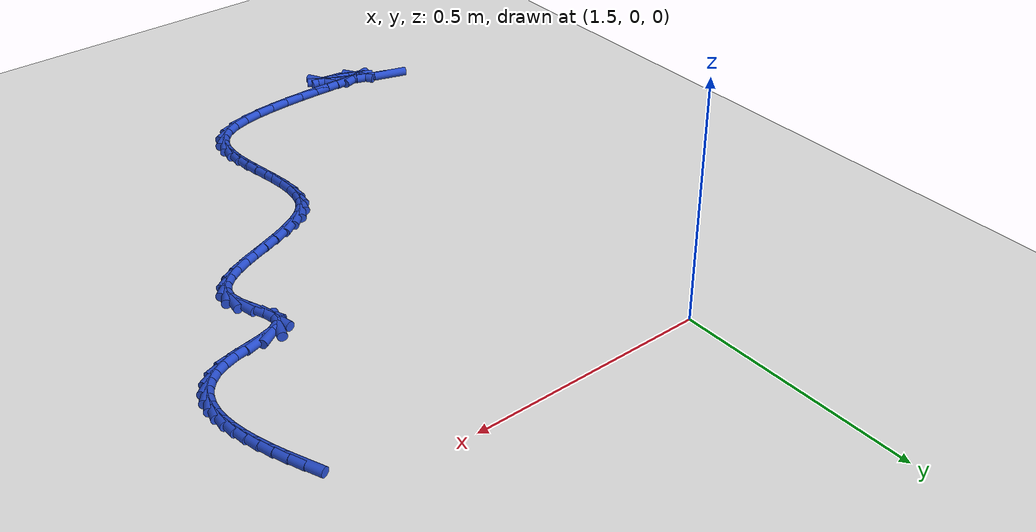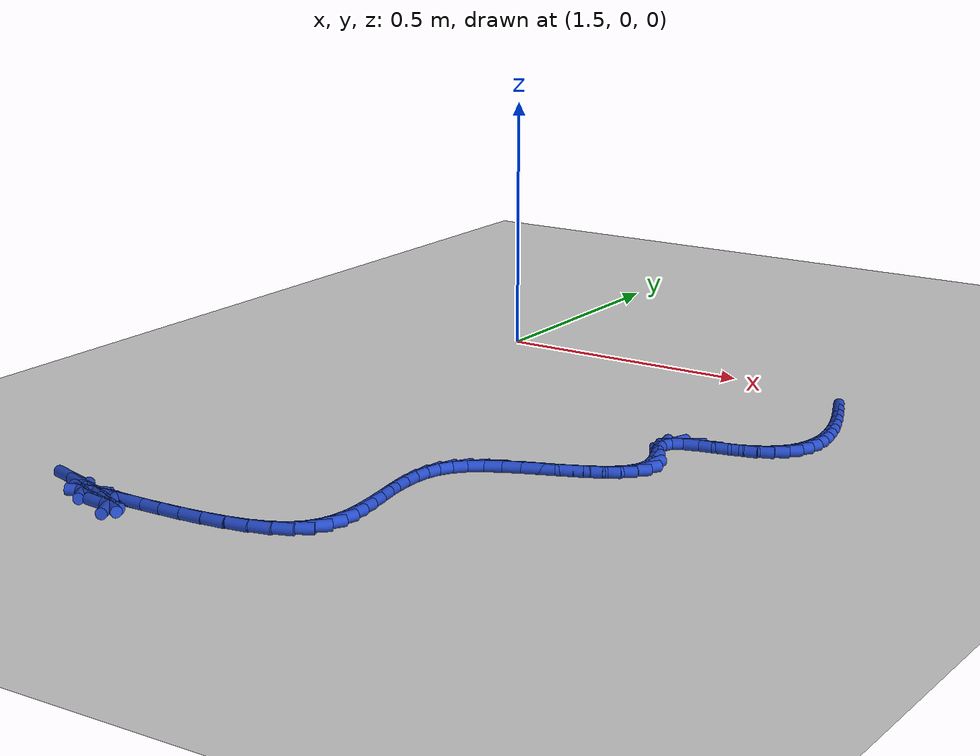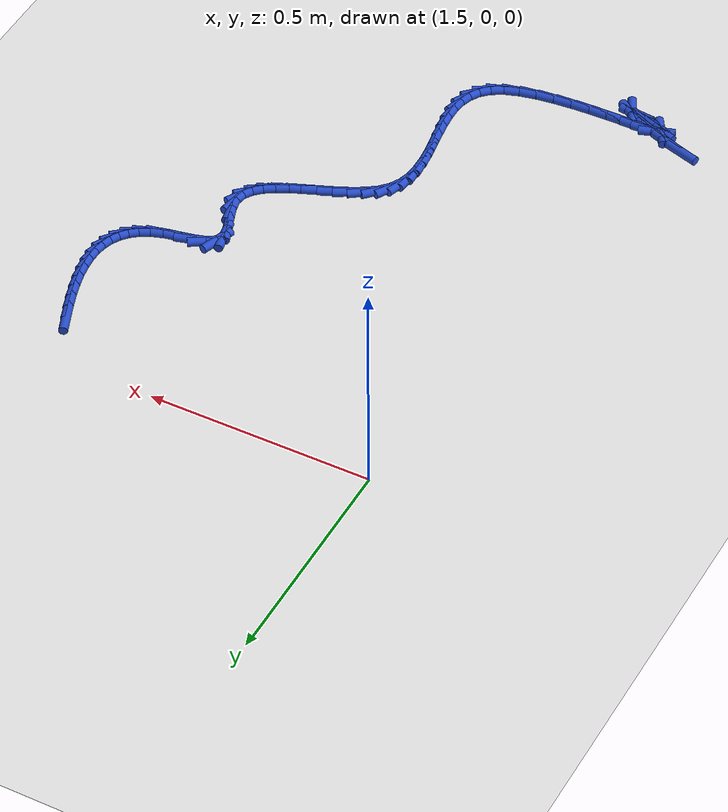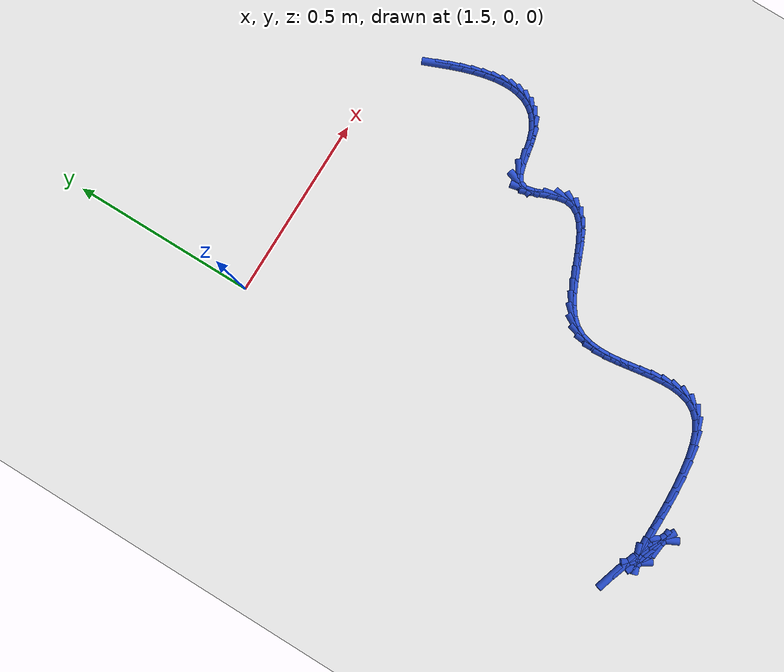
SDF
<sdf version="1.6">
 <world name="default">
  <model name="ground_plane">
   <static>1</static>
   <link name="link">
    <collision name="collision">
     <geometry><plane><normal>0 0 1</normal><size>100 100</size></plane></geometry>
     <surface><friction><ode><mu>100</mu><mu2>50</mu2></ode></friction></surface>
    </collision>
    <visual name="visual">
     <cast_shadows>0</cast_shadows>
     <geometry><plane><normal>0 0 1</normal><size>100 100</size></plane></geometry>
     <material>
      <script><uri>file://media/materials/scripts/gazebo.material</uri><name>Gazebo/WhiteGlow</name></script>
     </material>
    </visual>
   </link>
  </model>
  <model name="line">
   <link name="link_141">
    <pose>2.265449667367501 -0.10924414752717877 0.01 0 1.57 -1.1883199890599174</pose>
    <collision name="collision">
     <geometry><cylinder><radius>0.01</radius><length>0.08</length></cylinder></geometry>
    </collision>
    <visual name="visual">
     <material>
      <script><name>Gazebo/Blue</name><uri>file://media/materials/scripts/gazebo.material</uri></script>
     </material>
     <geometry><cylinder><radius>0.01</radius><length>0.08</length></cylinder></geometry>
    </visual>
   </link>
   <link name="link_142">
    <pose>2.27817619315328 -0.14087958956525654 0.01 0 1.57 -1.2213939995250278</pose>
    <collision name="collision">
     <geometry><cylinder><radius>0.01</radius><length>0.08</length></cylinder></geometry>
    </collision>
    <visual name="visual">
     <material>
      <script><name>Gazebo/Blue</name><uri>file://media/materials/scripts/gazebo.material</uri></script>
     </material>
     <geometry><cylinder><radius>0.01</radius><length>0.08</length></cylinder></geometry>
    </visual>
   </link>
   <link name="link_143">
    <pose>2.2894349260151463 -0.17178034897393352 0.01 0 1.57 -1.2632340523790242</pose>
    <collision name="collision">
     <geometry><cylinder><radius>0.01</radius><length>0.08</length></cylinder></geometry>
    </collision>
    <visual name="visual">
     <material>
      <script><name>Gazebo/Blue</name><uri>file://media/materials/scripts/gazebo.material</uri></script>
     </material>
     <geometry><cylinder><radius>0.01</radius><length>0.08</length></cylinder></geometry>
    </visual>
   </link>
   <link name="link_144">
    <pose>2.298964438918104 -0.20178116999364165 0.01 0 1.57 -1.3159232495802464</pose>
    <collision name="collision">
     <geometry><cylinder><radius>0.01</radius><length>0.08</length></cylinder></geometry>
    </collision>
    <visual name="visual">
     <material>
      <script><name>Gazebo/Blue</name><uri>file://media/materials/scripts/gazebo.material</uri></script>
     </material>
     <geometry><cylinder><radius>0.01</radius><length>0.08</length></cylinder></geometry>
    </visual>
   </link>
   <link name="link_145">
    <pose>2.3065033048271557 -0.23071679686481256 0.01 0 1.57 -1.3822399352591166</pose>
    <collision name="collision">
     <geometry><cylinder><radius>0.01</radius><length>0.08</length></cylinder></geometry>
    </collision>
    <visual name="visual">
     <material>
      <script><name>Gazebo/Blue</name><uri>file://media/materials/scripts/gazebo.material</uri></script>
     </material>
     <geometry><cylinder><radius>0.01</radius><length>0.08</length></cylinder></geometry>
    </visual>
   </link>
   <link name="link_146">
    <pose>2.3117900967073073 -0.2584219738278782 0.01 0 1.57 -1.465773802282627</pose>
    <collision name="collision">
     <geometry><cylinder><radius>0.01</radius><length>0.08</length></cylinder></geometry>
    </collision>
    <visual name="visual">
     <material>
      <script><name>Gazebo/Blue</name><uri>file://media/materials/scripts/gazebo.material</uri></script>
     </material>
     <geometry><cylinder><radius>0.01</radius><length>0.08</length></cylinder></geometry>
    </visual>
   </link>
   <link name="link_147">
    <pose>2.3145633875235623 -0.28473144512327025 0.01 0 1.57 1.5707301699780476</pose>
    <collision name="collision">
     <geometry><cylinder><radius>0.01</radius><length>0.08</length></cylinder></geometry>
    </collision>
    <visual name="visual">
     <material>
      <script><name>Gazebo/Blue</name><uri>file://media/materials/scripts/gazebo.material</uri></script>
     </material>
     <geometry><cylinder><radius>0.01</radius><length>0.08</length></cylinder></geometry>
    </visual>
   </link>
   <link name="link_148">
    <pose>2.3145617502409253 -0.3094799549914208 0.01 0 1.57 1.4395956334596052</pose>
    <collision name="collision">
     <geometry><cylinder><radius>0.01</radius><length>0.08</length></cylinder></geometry>
    </collision>
    <visual name="visual">
     <material>
      <script><name>Gazebo/Blue</name><uri>file://media/materials/scripts/gazebo.material</uri></script>
     </material>
     <geometry><cylinder><radius>0.01</radius><length>0.08</length></cylinder></geometry>
    </visual>
   </link>
   <link name="link_149">
    <pose>2.3115237578243994 -0.3325022476727614 0.01 0 1.57 1.2794902531644328</pose>
    <collision name="collision">
     <geometry><cylinder><radius>0.01</radius><length>0.08</length></cylinder></geometry>
    </collision>
    <visual name="visual">
     <material>
      <script><name>Gazebo/Blue</name><uri>file://media/materials/scripts/gazebo.material</uri></script>
     </material>
     <geometry><cylinder><radius>0.01</radius><length>0.08</length></cylinder></geometry>
    </visual>
   </link>
   <link name="link_150">
    <pose>2.305187983238988 -0.3536330674077239 0.01 0 1.57 1.0922491256917661</pose>
    <collision name="collision">
     <geometry><cylinder><radius>0.01</radius><length>0.08</length></cylinder></geometry>
    </collision>
    <visual name="visual">
     <material>
      <script><name>Gazebo/Blue</name><uri>file://media/materials/scripts/gazebo.material</uri></script>
     </material>
     <geometry><cylinder><radius>0.01</radius><length>0.08</length></cylinder></geometry>
    </visual>
   </link>
   <link name="link_151">
    <pose>2.295292999449698 -0.37270715843674024 0.01 0 1.57 0.8876481031042162</pose>
    <collision name="collision">
     <geometry><cylinder><radius>0.01</radius><length>0.08</length></cylinder></geometry>
    </collision>
    <visual name="visual">
     <material>
      <script><name>Gazebo/Blue</name><uri>file://media/materials/scripts/gazebo.material</uri></script>
     </material>
     <geometry><cylinder><radius>0.01</radius><length>0.08</length></cylinder></geometry>
    </visual>
   </link>
   <link name="link_152">
    <pose>2.28157737942153 -0.3895592650002415 0.01 0 1.57 0.6824603315181406</pose>
    <collision name="collision">
     <geometry><cylinder><radius>0.01</radius><length>0.08</length></cylinder></geometry>
    </collision>
    <visual name="visual">
     <material>
      <script><name>Gazebo/Blue</name><uri>file://media/materials/scripts/gazebo.material</uri></script>
     </material>
     <geometry><cylinder><radius>0.01</radius><length>0.08</length></cylinder></geometry>
    </visual>
   </link>
   <link name="link_153">
    <pose>2.2637796961194905 -0.4040241313386609 0.01 0 1.57 0.49359817610222023</pose>
    <collision name="collision">
     <geometry><cylinder><radius>0.01</radius><length>0.08</length></cylinder></geometry>
    </collision>
    <visual name="visual">
     <material>
      <script><name>Gazebo/Blue</name><uri>file://media/materials/scripts/gazebo.material</uri></script>
     </material>
     <geometry><cylinder><radius>0.01</radius><length>0.08</length></cylinder></geometry>
    </visual>
   </link>
   <link name="link_154">
    <pose>2.2416385225085818 -0.41593650169242946 0.01 0 1.57 0.33111780571313304</pose>
    <collision name="collision">
     <geometry><cylinder><radius>0.01</radius><length>0.08</length></cylinder></geometry>
    </collision>
    <visual name="visual">
     <material>
      <script><name>Gazebo/Blue</name><uri>file://media/materials/scripts/gazebo.material</uri></script>
     </material>
     <geometry><cylinder><radius>0.01</radius><length>0.08</length></cylinder></geometry>
    </visual>
   </link>
   <link name="link_155">
    <pose>2.2148924315538094 -0.42513112030197914 0.01 0 1.57 0.21434153716862916</pose>
    <collision name="collision">
     <geometry><cylinder><radius>0.01</radius><length>0.08</length></cylinder></geometry>
    </collision>
    <visual name="visual">
     <material>
      <script><name>Gazebo/Blue</name><uri>file://media/materials/scripts/gazebo.material</uri></script>
     </material>
     <geometry><cylinder><radius>0.01</radius><length>0.08</length></cylinder></geometry>
    </visual>
   </link>
   <link name="link_156">
    <pose>2.184032570766493 -0.43184886294657127 0.01 0 1.57 0.19484123318579932</pose>
    <collision name="collision">
     <geometry><cylinder><radius>0.01</radius><length>0.08</length></cylinder></geometry>
    </collision>
    <visual name="visual">
     <material>
      <script><name>Gazebo/Blue</name><uri>file://media/materials/scripts/gazebo.material</uri></script>
     </material>
     <geometry><cylinder><radius>0.01</radius><length>0.08</length></cylinder></geometry>
    </visual>
   </link>
   <link name="link_157">
    <pose>2.152702319187603 -0.43803172677364294 0.01 0 1.57 0.28593233086041525</pose>
    <collision name="collision">
     <geometry><cylinder><radius>0.01</radius><length>0.08</length></cylinder></geometry>
    </collision>
    <visual name="visual">
     <material>
      <script><name>Gazebo/Blue</name><uri>file://media/materials/scripts/gazebo.material</uri></script>
     </material>
     <geometry><cylinder><radius>0.01</radius><length>0.08</length></cylinder></geometry>
    </visual>
   </link>
   <link name="link_158">
    <pose>2.1253702542249893 -0.44606703236632383 0.01 0 1.57 0.5768455559353157</pose>
    <collision name="collision">
     <geometry><cylinder><radius>0.01</radius><length>0.08</length></cylinder></geometry>
    </collision>
    <visual name="visual">
     <material>
      <script><name>Gazebo/Blue</name><uri>file://media/materials/scripts/gazebo.material</uri></script>
     </material>
     <geometry><cylinder><radius>0.01</radius><length>0.08</length></cylinder></geometry>
    </visual>
   </link>
   <link name="link_159">
    <pose>2.106504956140573 -0.4583421018479608 0.01 0 1.57 1.2488324064501248</pose>
    <collision name="collision">
     <geometry><cylinder><radius>0.01</radius><length>0.08</length></cylinder></geometry>
    </collision>
    <visual name="visual">
     <material>
      <script><name>Gazebo/Blue</name><uri>file://media/materials/scripts/gazebo.material</uri></script>
     </material>
     <geometry><cylinder><radius>0.01</radius><length>0.08</length></cylinder></geometry>
    </visual>
   </link>
   <link name="link_160">
    <pose>2.100253686150079 -0.47708258226997163 0.01 0 1.57 -1.3658441360772549</pose>
    <collision name="collision">
     <geometry><cylinder><radius>0.01</radius><length>0.08</length></cylinder></geometry>
    </collision>
    <visual name="visual">
     <material>
      <script><name>Gazebo/Blue</name><uri>file://media/materials/scripts/gazebo.material</uri></script>
     </material>
     <geometry><cylinder><radius>0.01</radius><length>0.08</length></cylinder></geometry>
    </visual>
   </link>
   <link name="link_161">
    <pose>2.1053943073048553 -0.5018124512847172 0.01 0 1.57 -1.2006105305632502</pose>
    <collision name="collision">
     <geometry><cylinder><radius>0.01</radius><length>0.08</length></cylinder></geometry>
    </collision>
    <visual name="visual">
     <material>
      <script><name>Gazebo/Blue</name><uri>file://media/materials/scripts/gazebo.material</uri></script>
     </material>
     <geometry><cylinder><radius>0.01</radius><length>0.08</length></cylinder></geometry>
    </visual>
   </link>
   <link name="link_162">
    <pose>2.1162638746234705 -0.5298212470781661 0.01 0 1.57 -1.2086232534333459</pose>
    <collision name="collision">
     <geometry><cylinder><radius>0.01</radius><length>0.08</length></cylinder></geometry>
    </collision>
    <visual name="visual">
     <material>
      <script><name>Gazebo/Blue</name><uri>file://media/materials/scripts/gazebo.material</uri></script>
     </material>
     <geometry><cylinder><radius>0.01</radius><length>0.08</length></cylinder></geometry>
    </visual>
   </link>
   <link name="link_163">
    <pose>2.1270659436455484 -0.558331336163409 0.01 0 1.57 -1.3823649048780595</pose>
    <collision name="collision">
     <geometry><cylinder><radius>0.01</radius><length>0.08</length></cylinder></geometry>
    </collision>
    <visual name="visual">
     <material>
      <script><name>Gazebo/Blue</name><uri>file://media/materials/scripts/gazebo.material</uri></script>
     </material>
     <geometry><cylinder><radius>0.01</radius><length>0.08</length></cylinder></geometry>
    </visual>
   </link>
   <link name="link_164">
    <pose>2.1320749820216904 -0.5845987877914685 0.01 0 1.57 1.4123359082377895</pose>
    <collision name="collision">
     <geometry><cylinder><radius>0.01</radius><length>0.08</length></cylinder></geometry>
    </collision>
    <visual name="visual">
     <material>
      <script><name>Gazebo/Blue</name><uri>file://media/materials/scripts/gazebo.material</uri></script>
     </material>
     <geometry><cylinder><radius>0.01</radius><length>0.08</length></cylinder></geometry>
    </visual>
   </link>
   <link name="link_165">
    <pose>2.1284548469121503 -0.6072529251763822 0.01 0 1.57 1.0471958639278067</pose>
    <collision name="collision">
     <geometry><cylinder><radius>0.01</radius><length>0.08</length></cylinder></geometry>
    </collision>
    <visual name="visual">
     <material>
      <script><name>Gazebo/Blue</name><uri>file://media/materials/scripts/gazebo.material</uri></script>
     </material>
     <geometry><cylinder><radius>0.01</radius><length>0.08</length></cylinder></geometry>
    </visual>
   </link>
   <link name="link_166">
    <pose>2.117201429175815 -0.6267443405045714 0.01 0 1.57 0.7644983092018023</pose>
    <collision name="collision">
     <geometry><cylinder><radius>0.01</radius><length>0.08</length></cylinder></geometry>
    </collision>
    <visual name="visual">
     <material>
      <script><name>Gazebo/Blue</name><uri>file://media/materials/scripts/gazebo.material</uri></script>
     </material>
     <geometry><cylinder><radius>0.01</radius><length>0.08</length></cylinder></geometry>
    </visual>
   </link>
   <link name="link_167">
    <pose>2.0995747847182966 -0.6436491769468765 0.01 0 1.57 0.5798766462250383</pose>
    <collision name="collision">
     <geometry><cylinder><radius>0.01</radius><length>0.08</length></cylinder></geometry>
    </collision>
    <visual name="visual">
     <material>
      <script><name>Gazebo/Blue</name><uri>file://media/materials/scripts/gazebo.material</uri></script>
     </material>
     <geometry><cylinder><radius>0.01</radius><length>0.08</length></cylinder></geometry>
    </visual>
   </link>
   <link name="link_168">
    <pose>2.076834969445212 -0.658543577674139 0.01 0 1.57 0.4685583869411463</pose>
    <collision name="collision">
     <geometry><cylinder><radius>0.01</radius><length>0.08</length></cylinder></geometry>
    </collision>
    <visual name="visual">
     <material>
      <script><name>Gazebo/Blue</name><uri>file://media/materials/scripts/gazebo.material</uri></script>
     </material>
     <geometry><cylinder><radius>0.01</radius><length>0.08</length></cylinder></geometry>
    </visual>
   </link>
   <link name="link_169">
    <pose>2.050242039262175 -0.6720036858571994 0.01 0 1.57 0.4076002595366358</pose>
    <collision name="collision">
     <geometry><cylinder><radius>0.01</radius><length>0.08</length></cylinder></geometry>
    </collision>
    <visual name="visual">
     <material>
      <script><name>Gazebo/Blue</name><uri>file://media/materials/scripts/gazebo.material</uri></script>
     </material>
     <geometry><cylinder><radius>0.01</radius><length>0.08</length></cylinder></geometry>
    </visual>
   </link>
   <link name="link_170">
    <pose>2.0210560500747996 -0.6846056446668995 0.01 0 1.57 0.38367605017374073</pose>
    <collision name="collision">
     <geometry><cylinder><radius>0.01</radius><length>0.08</length></cylinder></geometry>
    </collision>
    <visual name="visual">
     <material>
      <script><name>Gazebo/Blue</name><uri>file://media/materials/scripts/gazebo.material</uri></script>
     </material>
     <geometry><cylinder><radius>0.01</radius><length>0.08</length></cylinder></geometry>
    </visual>
   </link>
   <link name="link_171">
    <pose>1.9905370577887003 -0.6969255972740804 0.01 0 1.57 0.39109350833750517</pose>
    <collision name="collision">
     <geometry><cylinder><radius>0.01</radius><length>0.08</length></cylinder></geometry>
    </collision>
    <visual name="visual">
     <material>
      <script><name>Gazebo/Blue</name><uri>file://media/materials/scripts/gazebo.material</uri></script>
     </material>
     <geometry><cylinder><radius>0.01</radius><length>0.08</length></cylinder></geometry>
    </visual>
   </link>
   <link name="link_172">
    <pose>1.959945118309492 -0.7095396868495827 0.01 0 1.57 0.4299633632502843</pose>
    <collision name="collision">
     <geometry><cylinder><radius>0.01</radius><length>0.08</length></cylinder></geometry>
    </collision>
    <visual name="visual">
     <material>
      <script><name>Gazebo/Blue</name><uri>file://media/materials/scripts/gazebo.material</uri></script>
     </material>
     <geometry><cylinder><radius>0.01</radius><length>0.08</length></cylinder></geometry>
    </visual>
   </link>
   <link name="link_173">
    <pose>1.9305402875427897 -0.7230240565642482 0.01 0 1.57 0.5058024806465212</pose>
    <collision name="collision">
     <geometry><cylinder><radius>0.01</radius><length>0.08</length></cylinder></geometry>
    </collision>
    <visual name="visual">
     <material>
      <script><name>Gazebo/Blue</name><uri>file://media/materials/scripts/gazebo.material</uri></script>
     </material>
     <geometry><cylinder><radius>0.01</radius><length>0.08</length></cylinder></geometry>
    </visual>
   </link>
   <link name="link_174">
    <pose>1.903582621394208 -0.7379548495889173 0.01 0 1.57 0.6300313702730788</pose>
    <collision name="collision">
     <geometry><cylinder><radius>0.01</radius><length>0.08</length></cylinder></geometry>
    </collision>
    <visual name="visual">
     <material>
      <script><name>Gazebo/Blue</name><uri>file://media/materials/scripts/gazebo.material</uri></script>
     </material>
     <geometry><cylinder><radius>0.01</radius><length>0.08</length></cylinder></geometry>
    </visual>
   </link>
   <link name="link_175">
    <pose>1.8803321757693603 -0.7549082090944316 0.01 0 1.57 0.8189231152573851</pose>
    <collision name="collision">
     <geometry><cylinder><radius>0.01</radius><length>0.08</length></cylinder></geometry>
    </collision>
    <visual name="visual">
     <material>
      <script><name>Gazebo/Blue</name><uri>file://media/materials/scripts/gazebo.material</uri></script>
     </material>
     <geometry><cylinder><radius>0.01</radius><length>0.08</length></cylinder></geometry>
    </visual>
   </link>
   <link name="link_176">
    <pose>1.8620490065738624 -0.7744602782516318 0.01 0 1.57 1.0677297220959183</pose>
    <collision name="collision">
     <geometry><cylinder><radius>0.01</radius><length>0.08</length></cylinder></geometry>
    </collision>
    <visual name="visual">
     <material>
      <script><name>Gazebo/Blue</name><uri>file://media/materials/scripts/gazebo.material</uri></script>
     </material>
     <geometry><cylinder><radius>0.01</radius><length>0.08</length></cylinder></geometry>
    </visual>
   </link>
   <link name="link_177">
    <pose>1.849637230536981 -0.7970152099118699 0.01 0 1.57 1.295944353619501</pose>
    <collision name="collision">
     <geometry><cylinder><radius>0.01</radius><length>0.08</length></cylinder></geometry>
    </collision>
    <visual name="visual">
     <material>
      <script><name>Gazebo/Blue</name><uri>file://media/materials/scripts/gazebo.material</uri></script>
     </material>
     <geometry><cylinder><radius>0.01</radius><length>0.08</length></cylinder></geometry>
    </visual>
   </link>
   <link name="link_178">
    <pose>1.8425182788366694 -0.822260721145841 0.01 0 1.57 1.4694328049998182</pose>
    <collision name="collision">
     <geometry><cylinder><radius>0.01</radius><length>0.08</length></cylinder></geometry>
    </collision>
    <visual name="visual">
     <material>
      <script><name>Gazebo/Blue</name><uri>file://media/materials/scripts/gazebo.material</uri></script>
     </material>
     <geometry><cylinder><radius>0.01</radius><length>0.08</length></cylinder></geometry>
    </visual>
   </link>
   <link name="link_179">
    <pose>1.8397275743736934 -0.8496980092721854 0.01 0 1.57 -1.5511298064376997</pose>
    <collision name="collision">
     <geometry><cylinder><radius>0.01</radius><length>0.08</length></cylinder></geometry>
    </collision>
    <visual name="visual">
     <material>
      <script><name>Gazebo/Blue</name><uri>file://media/materials/scripts/gazebo.material</uri></script>
     </material>
     <geometry><cylinder><radius>0.01</radius><length>0.08</length></cylinder></geometry>
    </visual>
   </link>
   <link name="link_180">
    <pose>1.8403005391330771 -0.8788282711670555 0.01 0 1.57 -1.4730997180146788</pose>
    <collision name="collision">
     <geometry><cylinder><radius>0.01</radius><length>0.08</length></cylinder></geometry>
    </collision>
    <visual name="visual">
     <material>
      <script><name>Gazebo/Blue</name><uri>file://media/materials/scripts/gazebo.material</uri></script>
     </material>
     <geometry><cylinder><radius>0.01</radius><length>0.08</length></cylinder></geometry>
    </visual>
   </link>
   <link name="link_181">
    <pose>1.8432725950998454 -0.9091527037066041 0.01 0 1.57 -1.4296838341416906</pose>
    <collision name="collision">
     <geometry><cylinder><radius>0.01</radius><length>0.08</length></cylinder></geometry>
    </collision>
    <visual name="visual">
     <material>
      <script><name>Gazebo/Blue</name><uri>file://media/materials/scripts/gazebo.material</uri></script>
     </material>
     <geometry><cylinder><radius>0.01</radius><length>0.08</length></cylinder></geometry>
    </visual>
   </link>
   <link name="link_182">
    <pose>1.8476791642590231 -0.9401725037669838 0.01 0 1.57 -1.4158325012314048</pose>
    <collision name="collision">
     <geometry><cylinder><radius>0.01</radius><length>0.08</length></cylinder></geometry>
    </collision>
    <visual name="visual">
     <material>
      <script><name>Gazebo/Blue</name><uri>file://media/materials/scripts/gazebo.material</uri></script>
     </material>
     <geometry><cylinder><radius>0.01</radius><length>0.08</length></cylinder></geometry>
    </visual>
   </link>
   <link name="link_183">
    <pose>1.8525556685956355 -0.9713888682243479 0.01 0 1.57 -1.4299912838372613</pose>
    <collision name="collision">
     <geometry><cylinder><radius>0.01</radius><length>0.08</length></cylinder></geometry>
    </collision>
    <visual name="visual">
     <material>
      <script><name>Gazebo/Blue</name><uri>file://media/materials/scripts/gazebo.material</uri></script>
     </material>
     <geometry><cylinder><radius>0.01</radius><length>0.08</length></cylinder></geometry>
    </visual>
   </link>
   <link name="link_184">
    <pose>1.8569375300947062 -1.0023029939548476 0.01 0 1.57 -1.4740438550440156</pose>
    <collision name="collision">
     <geometry><cylinder><radius>0.01</radius><length>0.08</length></cylinder></geometry>
    </collision>
    <visual name="visual">
     <material>
      <script><name>Gazebo/Blue</name><uri>file://media/materials/scripts/gazebo.material</uri></script>
     </material>
     <geometry><cylinder><radius>0.01</radius><length>0.08</length></cylinder></geometry>
    </visual>
   </link>
   <link name="link_185">
    <pose>1.8598601707412612 -1.0324160778346378 0.01 0 1.57 -1.553485119641485</pose>
    <collision name="collision">
     <geometry><cylinder><radius>0.01</radius><length>0.08</length></cylinder></geometry>
    </collision>
    <visual name="visual">
     <material>
      <script><name>Gazebo/Blue</name><uri>file://media/materials/scripts/gazebo.material</uri></script>
     </material>
     <geometry><cylinder><radius>0.01</radius><length>0.08</length></cylinder></geometry>
    </visual>
   </link>
   <link name="link_186">
    <pose>1.8603590125203238 -1.0612293167398699 0.01 0 1.57 1.4642394459500954</pose>
    <collision name="collision">
     <geometry><cylinder><radius>0.01</radius><length>0.08</length></cylinder></geometry>
    </collision>
    <visual name="visual">
     <material>
      <script><name>Gazebo/Blue</name><uri>file://media/materials/scripts/gazebo.material</uri></script>
     </material>
     <geometry><cylinder><radius>0.01</radius><length>0.08</length></cylinder></geometry>
    </visual>
   </link>
   <link name="link_187">
    <pose>1.8574694774169203 -1.0882439075466979 0.01 0 1.57 1.2857601433334769</pose>
    <collision name="collision">
     <geometry><cylinder><radius>0.01</radius><length>0.08</length></cylinder></geometry>
    </collision>
    <visual name="visual">
     <material>
      <script><name>Gazebo/Blue</name><uri>file://media/materials/scripts/gazebo.material</uri></script>
     </material>
     <geometry><cylinder><radius>0.01</radius><length>0.08</length></cylinder></geometry>
    </visual>
   </link>
   <link name="link_188">
    <pose>1.850226987416073 -1.1129610471312725 0.01 0 1.57 1.0504885274175004</pose>
    <collision name="collision">
     <geometry><cylinder><radius>0.01</radius><length>0.08</length></cylinder></geometry>
    </collision>
    <visual name="visual">
     <material>
      <script><name>Gazebo/Blue</name><uri>file://media/materials/scripts/gazebo.material</uri></script>
     </material>
     <geometry><cylinder><radius>0.01</radius><length>0.08</length></cylinder></geometry>
    </visual>
   </link>
   <link name="link_189">
    <pose>1.837666964502809 -1.1348819323697479 0.01 0 1.57 0.7796251333252011</pose>
    <collision name="collision">
     <geometry><cylinder><radius>0.01</radius><length>0.08</length></cylinder></geometry>
    </collision>
    <visual name="visual">
     <material>
      <script><name>Gazebo/Blue</name><uri>file://media/materials/scripts/gazebo.material</uri></script>
     </material>
     <geometry><cylinder><radius>0.01</radius><length>0.08</length></cylinder></geometry>
    </visual>
   </link>
   <link name="link_190">
    <pose>1.8188248306621522 -1.1535077601382764 0.01 0 1.57 0.5199842826975316</pose>
    <collision name="collision">
     <geometry><cylinder><radius>0.01</radius><length>0.08</length></cylinder></geometry>
    </collision>
    <visual name="visual">
     <material>
      <script><name>Gazebo/Blue</name><uri>file://media/materials/scripts/gazebo.material</uri></script>
     </material>
     <geometry><cylinder><radius>0.01</radius><length>0.08</length></cylinder></geometry>
    </visual>
   </link>
   <link name="link_191">
    <pose>1.792845140257589 -1.168382197038079 0.01 0 1.57 0.33239277849974136</pose>
    <collision name="collision">
     <geometry><cylinder><radius>0.01</radius><length>0.08</length></cylinder></geometry>
    </collision>
    <visual name="visual">
     <material>
      <script><name>Gazebo/Blue</name><uri>file://media/materials/scripts/gazebo.material</uri></script>
     </material>
     <geometry><cylinder><radius>0.01</radius><length>0.08</length></cylinder></geometry>
    </visual>
   </link>
   <link name="link_192">
    <pose>1.7603168108354335 -1.1796109949849065 0.01 0 1.57 0.2125884241951875</pose>
    <collision name="collision">
     <geometry><cylinder><radius>0.01</radius><length>0.08</length></cylinder></geometry>
    </collision>
    <visual name="visual">
     <material>
      <script><name>Gazebo/Blue</name><uri>file://media/materials/scripts/gazebo.material</uri></script>
     </material>
     <geometry><cylinder><radius>0.01</radius><length>0.08</length></cylinder></geometry>
    </visual>
   </link>
   <link name="link_193">
    <pose>1.7228514464001279 -1.1876978923887072 0.01 0 1.57 0.1330640005650252</pose>
    <collision name="collision">
     <geometry><cylinder><radius>0.01</radius><length>0.08</length></cylinder></geometry>
    </collision>
    <visual name="visual">
     <material>
      <script><name>Gazebo/Blue</name><uri>file://media/materials/scripts/gazebo.material</uri></script>
     </material>
     <geometry><cylinder><radius>0.01</radius><length>0.08</length></cylinder></geometry>
    </visual>
   </link>
   <link name="link_194">
    <pose>1.6820822843176844 -1.1931550464525615 0.01 0 1.57 0.07852785779947506</pose>
    <collision name="collision">
     <geometry><cylinder><radius>0.01</radius><length>0.08</length></cylinder></geometry>
    </collision>
    <visual name="visual">
     <material>
      <script><name>Gazebo/Blue</name><uri>file://media/materials/scripts/gazebo.material</uri></script>
     </material>
     <geometry><cylinder><radius>0.01</radius><length>0.08</length></cylinder></geometry>
    </visual>
   </link>
   <link name="link_195">
    <pose>1.6396425619541146 -1.196494614379549 0.01 0 1.57 0.04080266201163763</pose>
    <collision name="collision">
     <geometry><cylinder><radius>0.01</radius><length>0.08</length></cylinder></geometry>
    </collision>
    <visual name="visual">
     <material>
      <script><name>Gazebo/Blue</name><uri>file://media/materials/scripts/gazebo.material</uri></script>
     </material>
     <geometry><cylinder><radius>0.01</radius><length>0.08</length></cylinder></geometry>
    </visual>
   </link>
   <link name="link_196">
    <pose>1.5971655166754326 -1.1982287533727503 0.01 0 1.57 0.015675074537566003</pose>
    <collision name="collision">
     <geometry><cylinder><radius>0.01</radius><length>0.08</length></cylinder></geometry>
    </collision>
    <visual name="visual">
     <material>
      <script><name>Gazebo/Blue</name><uri>file://media/materials/scripts/gazebo.material</uri></script>
     </material>
     <geometry><cylinder><radius>0.01</radius><length>0.08</length></cylinder></geometry>
    </visual>
   </link>
   <link name="link_197">
    <pose>1.5562843858476498 -1.1988696206352452 0.01 0 1.57 0.0015869732820563821</pose>
    <collision name="collision">
     <geometry><cylinder><radius>0.01</radius><length>0.08</length></cylinder></geometry>
    </collision>
    <visual name="visual">
     <material>
      <script><name>Gazebo/Blue</name><uri>file://media/materials/scripts/gazebo.material</uri></script>
     </material>
     <geometry><cylinder><radius>0.01</radius><length>0.08</length></cylinder></geometry>
    </visual>
   </link>
   <link name="link_198">
    <pose>1.5186324068367805 -1.198929373370114 0.01 0 1.57 -0.00028071682151019155</pose>
    <collision name="collision">
     <geometry><cylinder><radius>0.01</radius><length>0.08</length></cylinder></geometry>
    </collision>
    <visual name="visual">
     <material>
      <script><name>Gazebo/Blue</name><uri>file://media/materials/scripts/gazebo.material</uri></script>
     </material>
     <geometry><cylinder><radius>0.01</radius><length>0.08</length></cylinder></geometry>
    </visual>
   </link>
   <link name="link_199">
    <pose>1.485842817008836 -1.1989201687804372 0.01 0 1.57 0.01650401194028368</pose>
    <collision name="collision">
     <geometry><cylinder><radius>0.01</radius><length>0.08</length></cylinder></geometry>
    </collision>
    <visual name="visual">
     <material>
      <script><name>Gazebo/Blue</name><uri>file://media/materials/scripts/gazebo.material</uri></script>
     </material>
     <geometry><cylinder><radius>0.01</radius><length>0.08</length></cylinder></geometry>
    </visual>
   </link>
   <link name="link_200">
    <pose>1.45954885372983 -1.1993541640692944 0.01 0 1.57 0.07633608913253542</pose>
    <collision name="collision">
     <geometry><cylinder><radius>0.01</radius><length>0.08</length></cylinder></geometry>
    </collision>
    <visual name="visual">
     <material>
      <script><name>Gazebo/Blue</name><uri>file://media/materials/scripts/gazebo.material</uri></script>
     </material>
     <geometry><cylinder><radius>0.01</radius><length>0.08</length></cylinder></geometry>
    </visual>
   </link>
   <link name="link_201">
    <pose>1.4413837543657748 -1.200743516439766 0.01 0 1.57 0.3277222183588083</pose>
    <collision name="collision">
     <geometry><cylinder><radius>0.01</radius><length>0.08</length></cylinder></geometry>
    </collision>
    <visual name="visual">
     <material>
      <script><name>Gazebo/Blue</name><uri>file://media/materials/scripts/gazebo.material</uri></script>
     </material>
     <geometry><cylinder><radius>0.01</radius><length>0.08</length></cylinder></geometry>
    </visual>
   </link>
   <link name="link_202">
    <pose>1.4329807562826824 -1.203600383094932 0.01 0 1.57 -1.0167440067560154</pose>
    <collision name="collision">
     <geometry><cylinder><radius>0.01</radius><length>0.08</length></cylinder></geometry>
    </collision>
    <visual name="visual">
     <material>
      <script><name>Gazebo/Blue</name><uri>file://media/materials/scripts/gazebo.material</uri></script>
     </material>
     <geometry><cylinder><radius>0.01</radius><length>0.08</length></cylinder></geometry>
    </visual>
   </link>
   <link name="link_203">
    <pose>1.435973096846566 -1.2084369212378727 0.01 0 1.57 -0.4290526901894886</pose>
    <collision name="collision">
     <geometry><cylinder><radius>0.01</radius><length>0.08</length></cylinder></geometry>
    </collision>
    <visual name="visual">
     <material>
      <script><name>Gazebo/Blue</name><uri>file://media/materials/scripts/gazebo.material</uri></script>
     </material>
     <geometry><cylinder><radius>0.01</radius><length>0.08</length></cylinder></geometry>
    </visual>
   </link>
   <link name="link_204">
    <pose>1.4519884468645643 -1.2157635428547764 0.01 0 1.57 -0.32778596723351205</pose>
    <collision name="collision">
     <geometry><cylinder><radius>0.01</radius><length>0.08</length></cylinder></geometry>
    </collision>
    <visual name="visual">
     <material>
      <script><name>Gazebo/Blue</name><uri>file://media/materials/scripts/gazebo.material</uri></script>
     </material>
     <geometry><cylinder><radius>0.01</radius><length>0.08</length></cylinder></geometry>
    </visual>
   </link>
   <link name="link_205">
    <pose>1.4788497872467412 -1.224897820831869 0.01 0 1.57 -0.27158681850420363</pose>
    <collision name="collision">
     <geometry><cylinder><radius>0.01</radius><length>0.08</length></cylinder></geometry>
    </collision>
    <visual name="visual">
     <material>
      <script><name>Gazebo/Blue</name><uri>file://media/materials/scripts/gazebo.material</uri></script>
     </material>
     <geometry><cylinder><radius>0.01</radius><length>0.08</length></cylinder></geometry>
    </visual>
   </link>
   <link name="link_206">
    <pose>1.5039529773475218 -1.2318882371169417 0.01 0 1.57 -0.1111140484156269</pose>
    <collision name="collision">
     <geometry><cylinder><radius>0.01</radius><length>0.08</length></cylinder></geometry>
    </collision>
    <visual name="visual">
     <material>
      <script><name>Gazebo/Blue</name><uri>file://media/materials/scripts/gazebo.material</uri></script>
     </material>
     <geometry><cylinder><radius>0.01</radius><length>0.08</length></cylinder></geometry>
    </visual>
   </link>
   <link name="link_207">
    <pose>1.5157787521188533 -1.2332076814011061 0.01 0 1.57 -1.1101268459741893</pose>
    <collision name="collision">
     <geometry><cylinder><radius>0.01</radius><length>0.08</length></cylinder></geometry>
    </collision>
    <visual name="visual">
     <material>
      <script><name>Gazebo/Blue</name><uri>file://media/materials/scripts/gazebo.material</uri></script>
     </material>
     <geometry><cylinder><radius>0.01</radius><length>0.08</length></cylinder></geometry>
    </visual>
   </link>
   <link name="link_208">
    <pose>1.5137277560887088 -1.229074965606172 0.01 0 1.57 -0.5467626782941728</pose>
    <collision name="collision">
     <geometry><cylinder><radius>0.01</radius><length>0.08</length></cylinder></geometry>
    </collision>
    <visual name="visual">
     <material>
      <script><name>Gazebo/Blue</name><uri>file://media/materials/scripts/gazebo.material</uri></script>
     </material>
     <geometry><cylinder><radius>0.01</radius><length>0.08</length></cylinder></geometry>
    </visual>
   </link>
   <link name="link_209">
    <pose>1.4998108328252233 -1.2206042939228152 0.01 0 1.57 -0.45717959868280456</pose>
    <collision name="collision">
     <geometry><cylinder><radius>0.01</radius><length>0.08</length></cylinder></geometry>
    </collision>
    <visual name="visual">
     <material>
      <script><name>Gazebo/Blue</name><uri>file://media/materials/scripts/gazebo.material</uri></script>
     </material>
     <geometry><cylinder><radius>0.01</radius><length>0.08</length></cylinder></geometry>
    </visual>
   </link>
   <link name="link_210">
    <pose>1.476038825896534 -1.2089098705417127 0.01 0 1.57 -0.411663214974489</pose>
    <collision name="collision">
     <geometry><cylinder><radius>0.01</radius><length>0.08</length></cylinder></geometry>
    </collision>
    <visual name="visual">
     <material>
      <script><name>Gazebo/Blue</name><uri>file://media/materials/scripts/gazebo.material</uri></script>
     </material>
     <geometry><cylinder><radius>0.01</radius><length>0.08</length></cylinder></geometry>
    </visual>
   </link>
   <link name="link_211">
    <pose>1.444422578870776 -1.1951058996535395 0.01 0 1.57 -0.3763434810968919</pose>
    <collision name="collision">
     <geometry><cylinder><radius>0.01</radius><length>0.08</length></cylinder></geometry>
    </collision>
    <visual name="visual">
     <material>
      <script><name>Gazebo/Blue</name><uri>file://media/materials/scripts/gazebo.material</uri></script>
     </material>
     <geometry><cylinder><radius>0.01</radius><length>0.08</length></cylinder></geometry>
    </visual>
   </link>
   <link name="link_212">
    <pose>1.4069729353160856 -1.180306585448973 0.01 0 1.57 -0.34174227762597975</pose>
    <collision name="collision">
     <geometry><cylinder><radius>0.01</radius><length>0.08</length></cylinder></geometry>
    </collision>
    <visual name="visual">
     <material>
      <script><name>Gazebo/Blue</name><uri>file://media/materials/scripts/gazebo.material</uri></script>
     </material>
     <geometry><cylinder><radius>0.01</radius><length>0.08</length></cylinder></geometry>
    </visual>
   </link>
   <link name="link_213">
    <pose>1.3657007388006 -1.1656261321186887 0.01 0 1.57 -0.3025394753167723</pose>
    <collision name="collision">
     <geometry><cylinder><radius>0.01</radius><length>0.08</length></cylinder></geometry>
    </collision>
    <visual name="visual">
     <material>
      <script><name>Gazebo/Blue</name><uri>file://media/materials/scripts/gazebo.material</uri></script>
     </material>
     <geometry><cylinder><radius>0.01</radius><length>0.08</length></cylinder></geometry>
    </visual>
   </link>
  </model>
 </world>
</sdf>
